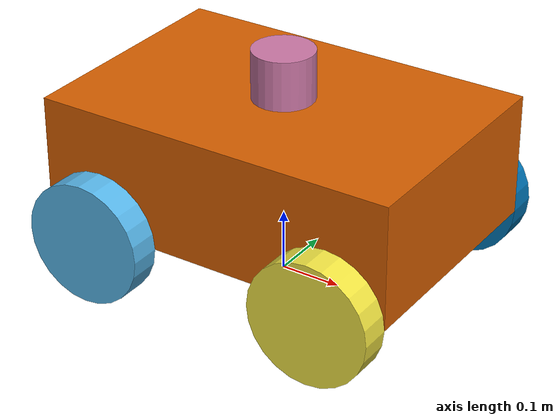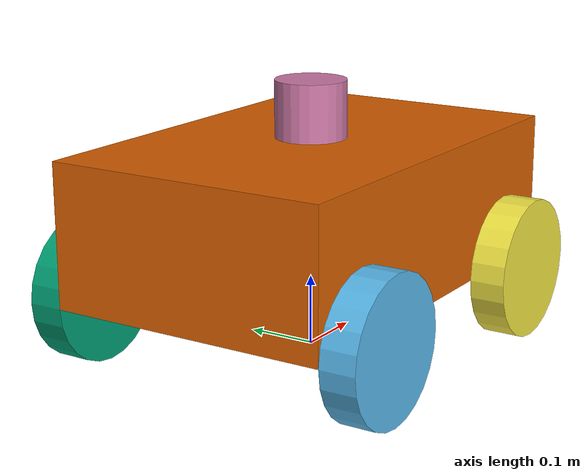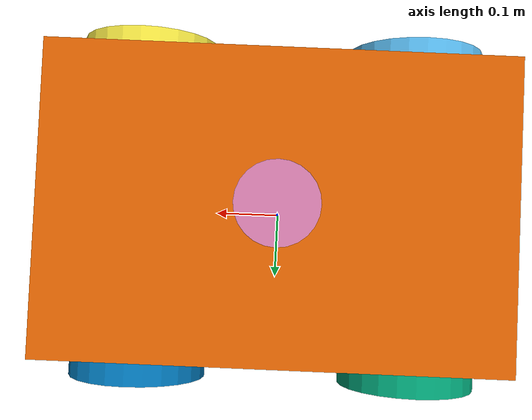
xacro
<?xml version="1.0"?>
<robot xmlns:xacro="http://www.ros.org/wiki/xacro" name="mobile">
    <xacro:include filename="common_properties.xacro"/>
    <xacro:include filename="mobile_base.xacro"/>
    <link name="base_footprint"/>
    <xacro:wheel prefix="right_back"/>
    <xacro:wheel prefix="left_back"/>
    <xacro:wheel prefix="right_front"/>
    <xacro:wheel prefix="left_front"/>
    <xacro:body name="base_link"/>
    <link name="lidar_cylinder">
        <visual>
            <origin xyz="0.0 0.0 0.04" rpy="0.0 0.0 0.0"/>
            <geometry>
                <cylinder radius="0.05" length="0.08"/>
            </geometry>
        </visual>
        <collision>
            <origin xyz="0.0 0.0 0.04" rpy="0.0 0.0 0.0"/>
            <geometry>
                <cylinder radius="0.05" length="0.08"/>
            </geometry>
        </collision>
        <xacro:cylinder_inertia m="0.1" r="0.05" l="0.08" o_xyz="0 0 0.04" o_rpy="0 0 0"/>
    </link>
    <joint name="body" type="fixed">
        <parent link="base_footprint"/>
        <child link="base_link"/>
        <origin xyz="0 0 ${base_height/2}" rpy="0 0 0"/>
    </joint>
    <joint name="lidar_joint" type="fixed">
        <parent link="base_link"/>
        <child link="lidar_cylinder"/>
        <origin xyz="0 0 ${base_height}" rpy="0 0 0"/>
    </joint>
    <joint name="right_back" type="continuous">
        <parent link="base_link"/>
        <child link="right_back_wheel"/>
        <origin xyz="-${base_length/3} -${base_width/2 + wheel_length/2} 0" rpy="0 0 0"/>
        <limit effort="100" velocity="100"/>
        <axis xyz="0 1 0"/>
    </joint>
    <joint name="left_back" type="continuous">
        <parent link="base_link"/>
        <child link="left_back_wheel"/>
        <origin xyz="-${base_length/3} ${base_width/2 + wheel_length/2} 0" rpy="0 0 0"/>
        <limit effort="100" velocity="100"/>
        <axis xyz="0 1 0"/>
    </joint>
    <joint name="right_front" type="continuous">
        <parent link="base_link"/>
        <child link="right_front_wheel"/>
        <origin xyz="${base_length/3} -${base_width/2 + wheel_length/2} 0" rpy="0 0 0"/>
        <limit effort="100" velocity="100"/>
        <axis xyz="0 1 0"/>
    </joint>
    <joint name="left_front" type="continuous">
        <parent link="base_link"/>
        <child link="left_front_wheel"/>
        <origin xyz="${base_length/3} ${base_width/2 + wheel_length/2} 0" rpy="0 0 0"/>
        <limit effort="100" velocity="100"/>
        <axis xyz="0 1 0"/>
    </joint>

    <gazebo>
        <plugin
        filename="gz-sim-diff-drive-system"
        name="gz::sim::systems::DiffDrive">
            <left_joint>left_front</left_joint>
            <left_joint>left_back</left_joint>
            <right_joint>right_front</right_joint>
            <right_joint>right_back</right_joint>
            <frame_id>odom</frame_id>
            <child_frame_id>base_footprint</child_frame_id>
            <wheel_separation>0.45</wheel_separation>
            <wheel_radius>0.1</wheel_radius>
            <topic>/cmd_vel</topic>
            <frame_id>odom</frame_id>
            <child_frame_id>base_footprint</child_frame_id>

        </plugin>
        <plugin
        filename="gz-sim-odometry-publisher-system"
        name="gz::sim::systems::OdometryPublisher">
            <odom_frame>odom</odom_frame>
            <robot_base_frame>base_footprint</robot_base_frame>
            <odom_topic>/odom</odom_topic>
            <tf_topic>/tf</tf_topic>
            <dimensions>3</dimensions>
        </plugin>
        <plugin
        filename="gz-sim-joint-state-publisher-system"
        name="gz::sim::systems::JointStatePublisher">
        <topic>/joint_states</topic>
        </plugin>
    </gazebo>
    <gazebo reference="lidar_cylinder">
        <sensor name="gpu_lidar" type="gpu_lidar">
            <lidar>
                <scan>
                    <horizontal>
                        <samples>1800</samples>
                        <resolution>1</resolution>
                        <min_angle>-3.1459</min_angle>
                        <max_angle>3.1459</max_angle>
                    </horizontal>
                    <vertical>
                        <samples>16</samples>
                        <resolution>1</resolution>
                        <min_angle>-0.261799</min_angle>
                        <max_angle>0.261799</max_angle>
                    </vertical>
                </scan>
                <range>
                    <min>0.04</min>
                    <max>8</max>
                    <resolution>0.01</resolution>
                </range>
                <noise>
                    <type>gaussian</type>
                    <mean>0</mean>
                    <stddev>0.01</stddev>
                </noise>
            </lidar>
            <gz_frame_id>lidar_cylinder</gz_frame_id>
            <topic>/scan</topic>
            <visualize>true</visualize>
            <update_rate>10</update_rate>
        </sensor>
    </gazebo>
    <gazebo>
        <plugin
            filename="gz-sim-sensors-system"
            name="gz::sim::systems::Sensors">
            <render_engine>ogre2</render_engine>
        </plugin>
    </gazebo>
</robot>

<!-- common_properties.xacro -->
<robot xmlns:xacro="https://www.ros.org/wiki/xacro">
    <xacro:property name="base_length" value="0.6"/>
    <xacro:property name="base_width" value="0.4"/>
    <xacro:property name="wheel_radius" value="0.1"/>
    <xacro:property name="wheel_length" value="0.05"/>
    <xacro:property name="base_height" value="0.2"/>
    <xacro:macro name="box_inertia" params="m x y z o_xyz o_rpy">
        <inertial>
            <origin xyz="${o_xyz}" rpy="${o_rpy}"/>
            <mass value="${m}"/>
            <inertia ixx="${(m/12) * (z*z+y*y)}" ixy="0.0" ixz="0.0" iyy="${(m/12) * (z*z+x*x)}" iyz="0.0" izz="${(m/12) * (x*x+y*y)}"/>
        </inertial>
    </xacro:macro>
    <xacro:macro name="cylinder_inertia" params="m r l o_xyz o_rpy">
        <inertial>
            <mass value="${m}" />
            <origin xyz="${o_xyz}" rpy="${o_rpy}" />
            <inertia ixx="${(m/12) * (3*r*r + l*l)}" ixy="0" ixz="0"
                    iyy="${(m/12) * (3*r*r + l*l)}" iyz="0"
                    izz="${(m/2) * (r*r)}" />
        </inertial>
    </xacro:macro>
    <xacro:macro name="sphere_inertia" params="m r o_xyz o_rpy">
        <inertial>
            <origin xyz="${o_xyz}" rpy="${o_rpy}"/>
            <mass value="${m}"/>
            <inertia ixx="${(m*r*r) * (2/5)}" ixy="0.0" ixz="0.0" iyy="${(m*r*r) * (2/5)}" iyz="0.0" izz="${(m*r*r) * (2/5)}"/>
        </inertial>
    </xacro:macro>
</robot>

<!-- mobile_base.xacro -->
<robot xmlns:xacro="http://www.ros.org/wiki/xacro">
    <xacro:macro name="wheel" params="prefix">
        <link name="${prefix}_wheel">
            <visual>
                <origin xyz="0.0 0.0 0" rpy="${pi /2} 0.0 0.0"/>
                <geometry>
                    <cylinder radius="${wheel_radius}" length="${wheel_length}"/>
                </geometry>
            </visual>
            <collision>
                <geometry>
                    <sphere radius="${wheel_radius}"/>
                </geometry>
                <origin xyz="0 0 0" rpy="${pi /2} 0 0" />
            </collision>
            <gazebo reference="${prefix}_wheel">
                <mu1>0.1</mu1>
                <mu2>0.01</mu2>
                <surface>
                    <friction>
                        <ode>
                            <mu>0.1</mu>
                            <mu2>0.01</mu2>
                            <fdir1>1 0 0</fdir1> </ode>
                    </friction>
                    <contact>
                        <ode>
                            <kp>1000000.0</kp>
                            <kd>100.0</kd>
                            <min_depth>0.001</min_depth>
                        </ode>
                    </contact>
                </surface>
            </gazebo>
            <xacro:cylinder_inertia m="1.0" r="${wheel_radius}" l="${wheel_length}" o_xyz="0 0 0" o_rpy="${pi / 2.0} 0 0" />
        </link>
    </xacro:macro>
    <xacro:macro name="body" params="name">
        <link name="${name}">
            <visual>
                <origin xyz="0.0 0.0 ${base_height/2}" rpy="0.0 0.0 0.0"/>
                <geometry>
                    <box size="${base_length} ${base_width} ${base_height}"/>
                </geometry>
            </visual>
            <xacro:box_inertia m="5.0" x="${base_length}" y="${base_width}" z="${base_height}" o_xyz="0 0 ${base_height/2}" o_rpy="0 0 0"/>
            <collision>
                <geometry>
                    <box size="${base_length} ${base_width} ${base_height}" />
                </geometry>
                <origin xyz="0 0 ${base_height / 2.0}" rpy="0 0 0" />
            </collision>
        </link>
    </xacro:macro>
</robot>
